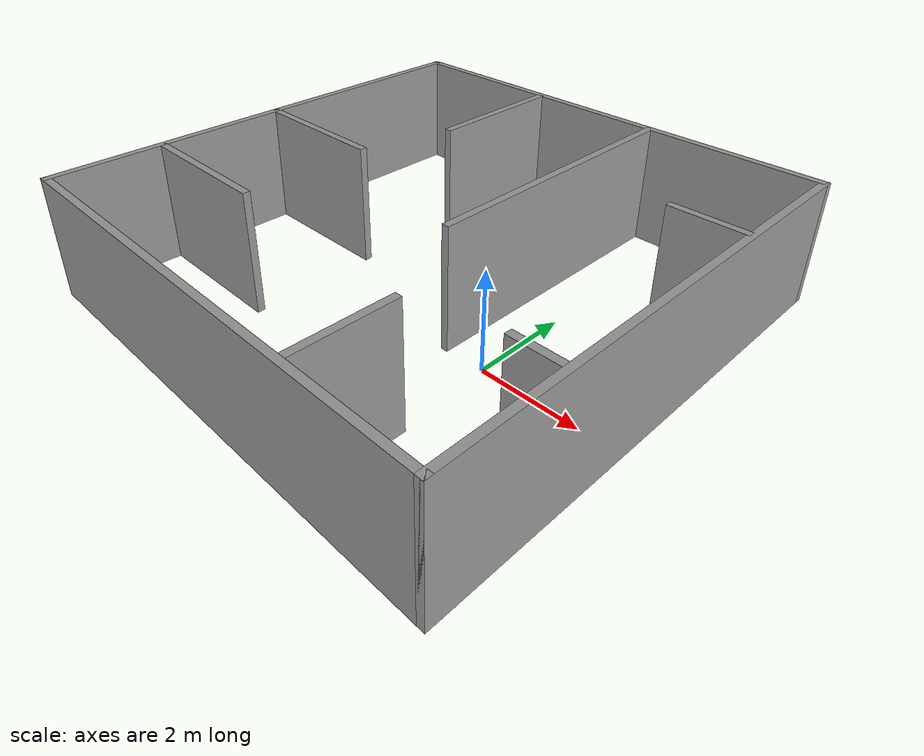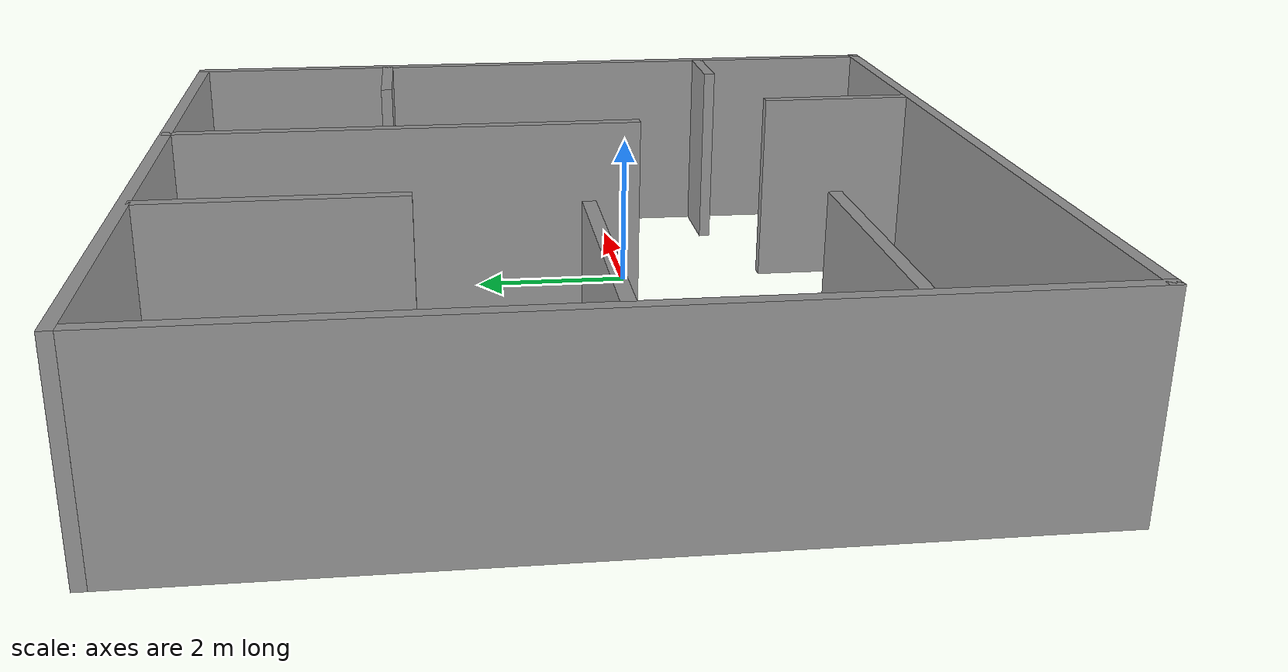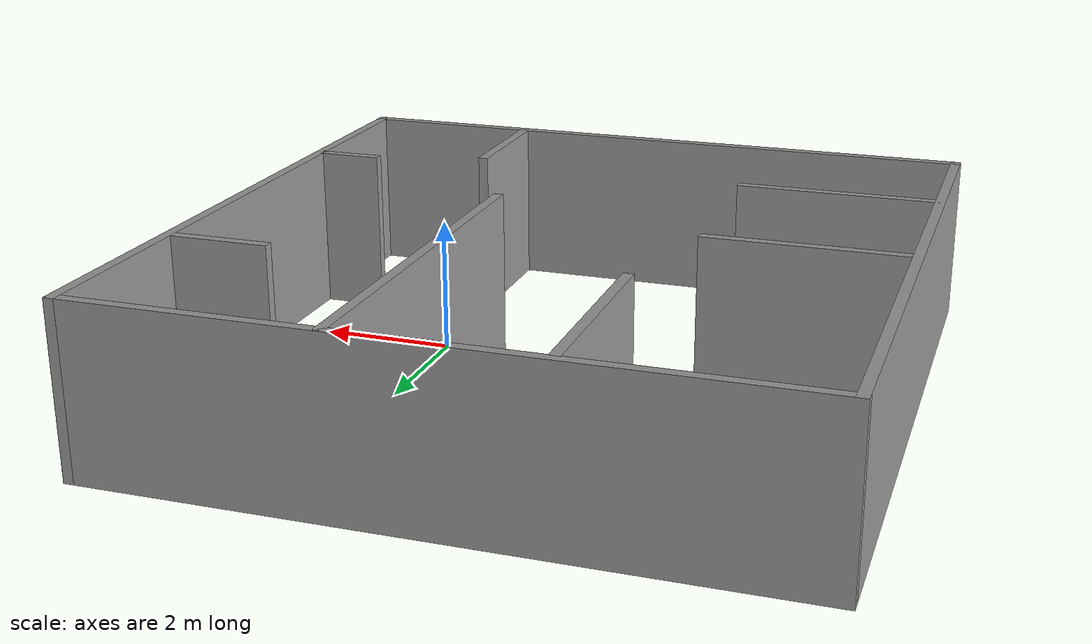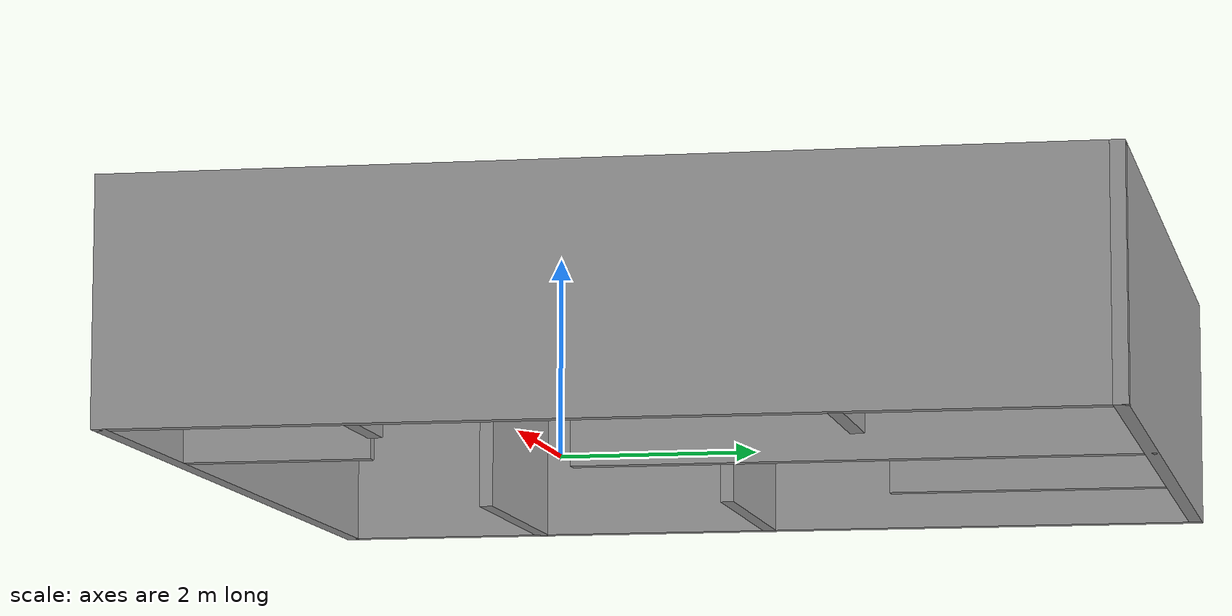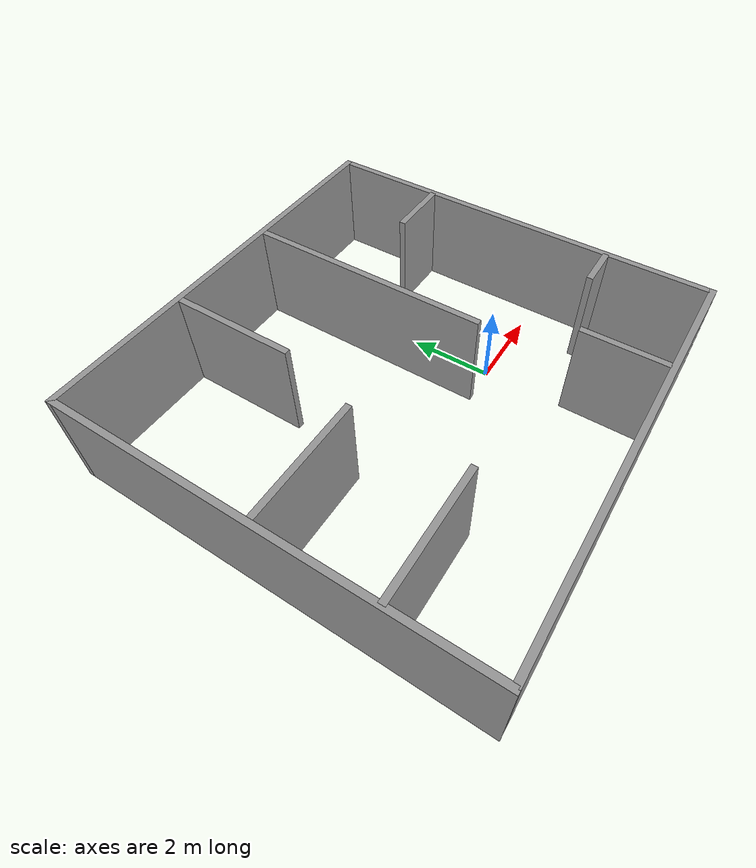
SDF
<?xml version='1.0'?>
<sdf version='1.6'>
  <model name='10*10EMPTY'>
    <pose frame=''>-2.17631 0.958638 0 0 -0 0</pose>
    <link name='Wall_25'>
      <collision name='Wall_25_Collision'>
        <geometry>
          <box>
            <size>10 0.15 2.5</size>
          </box>
        </geometry>
        <pose frame=''>0 0 1.25 0 -0 0</pose>
      </collision>
      <visual name='Wall_25_Visual'>
        <pose frame=''>0 0 1.25 0 -0 0</pose>
        <geometry>
          <box>
            <size>10 0.15 2.5</size>
          </box>
        </geometry>
        <material>
          <script>
            <uri>file://media/materials/scripts/gazebo.material</uri>
            <name>Gazebo/Grey</name>
          </script>
          <ambient>1 1 1 1</ambient>
        </material>
        <meta>
          <layer>0</layer>
        </meta>
      </visual>
      <pose frame=''>0 -4.925 0 0 -0 0</pose>
    </link>
    <link name='Wall_27'>
      <collision name='Wall_27_Collision'>
        <geometry>
          <box>
            <size>10 0.15 2.5</size>
          </box>
        </geometry>
        <pose frame=''>0 0 1.25 0 -0 0</pose>
      </collision>
      <visual name='Wall_27_Visual'>
        <pose frame=''>0 0 1.25 0 -0 0</pose>
        <geometry>
          <box>
            <size>10 0.15 2.5</size>
          </box>
        </geometry>
        <material>
          <script>
            <uri>file://media/materials/scripts/gazebo.material</uri>
            <name>Gazebo/Grey</name>
          </script>
          <ambient>1 1 1 1</ambient>
        </material>
        <meta>
          <layer>0</layer>
        </meta>
      </visual>
      <pose frame=''>4.925 -0 0 0 -0 1.5708</pose>
    </link>
    <link name='Wall_28'>
      <collision name='Wall_28_Collision'>
        <geometry>
          <box>
            <size>10 0.15 2.5</size>
          </box>
        </geometry>
        <pose frame=''>0 0 1.25 0 -0 0</pose>
      </collision>
      <visual name='Wall_28_Visual'>
        <pose frame=''>0 0 1.25 0 -0 0</pose>
        <geometry>
          <box>
            <size>10 0.15 2.5</size>
          </box>
        </geometry>
        <material>
          <script>
            <uri>file://media/materials/scripts/gazebo.material</uri>
            <name>Gazebo/Grey</name>
          </script>
          <ambient>1 1 1 1</ambient>
        </material>
        <meta>
          <layer>0</layer>
        </meta>
      </visual>
      <pose frame=''>0 4.925 0 0 -0 3.14159</pose>
    </link>
    <link name='Wall_29'>
      <collision name='Wall_29_Collision'>
        <geometry>
          <box>
            <size>10 0.15 2.5</size>
          </box>
        </geometry>
        <pose frame=''>0 0 1.25 0 -0 0</pose>
      </collision>
      <visual name='Wall_29_Visual'>
        <pose frame=''>0 0 1.25 0 -0 0</pose>
        <geometry>
          <box>
            <size>10 0.15 2.5</size>
          </box>
        </geometry>
        <material>
          <script>
            <uri>file://media/materials/scripts/gazebo.material</uri>
            <name>Gazebo/Grey</name>
          </script>
          <ambient>1 1 1 1</ambient>
        </material>
        <meta>
          <layer>0</layer>
        </meta>
      </visual>
      <pose frame=''>-4.925 -0 0 0 -0 -1.5708</pose>
    </link>
    <link name='Wall_33'>
      <collision name='Wall_33_Collision'>
        <geometry>
          <box>
            <size>3 0.15 2.5</size>
          </box>
        </geometry>
        <pose frame=''>0 0 1.25 0 -0 0</pose>
      </collision>
      <visual name='Wall_33_Visual'>
        <pose frame=''>0 0 1.25 0 -0 0</pose>
        <geometry>
          <box>
            <size>3 0.15 2.5</size>
          </box>
        </geometry>
        <material>
          <script>
            <uri>file://media/materials/scripts/gazebo.material</uri>
            <name>Gazebo/Grey</name>
          </script>
          <ambient>1 1 1 1</ambient>
        </material>
        <meta>
          <layer>0</layer>
        </meta>
      </visual>
      <pose frame=''>-3.42448 -2.6552 0 0 -0 0</pose>
    </link>
    <link name='Wall_35'>
      <collision name='Wall_35_Collision'>
        <geometry>
          <box>
            <size>3 0.15 2.5</size>
          </box>
        </geometry>
        <pose frame=''>0 0 1.25 0 -0 0</pose>
      </collision>
      <visual name='Wall_35_Visual'>
        <pose frame=''>0 0 1.25 0 -0 0</pose>
        <geometry>
          <box>
            <size>3 0.15 2.5</size>
          </box>
        </geometry>
        <material>
          <script>
            <uri>file://media/materials/scripts/gazebo.material</uri>
            <name>Gazebo/Grey</name>
          </script>
          <ambient>1 1 1 1</ambient>
        </material>
        <meta>
          <layer>0</layer>
        </meta>
      </visual>
      <pose frame=''>-3.47577 0.029239 0 0 -0 0</pose>
    </link>
    <link name='Wall_37'>
      <collision name='Wall_37_Collision'>
        <geometry>
          <box>
            <size>6 0.15 2.5</size>
          </box>
        </geometry>
        <pose frame=''>0 0 1.25 0 -0 0</pose>
      </collision>
      <visual name='Wall_37_Visual'>
        <pose frame=''>0 0 1.25 0 -0 0</pose>
        <geometry>
          <box>
            <size>6 0.15 2.5</size>
          </box>
        </geometry>
        <material>
          <script>
            <uri>file://media/materials/scripts/gazebo.material</uri>
            <name>Gazebo/Grey</name>
          </script>
          <ambient>1 1 1 1</ambient>
        </material>
        <meta>
          <layer>0</layer>
        </meta>
      </visual>
      <pose frame=''>1.32303 1.97727 0 0 -0 -1.5708</pose>
    </link>
    <link name='Wall_39'>
      <collision name='Wall_39_Collision'>
        <geometry>
          <box>
            <size>3 0.15 2.5</size>
          </box>
        </geometry>
        <pose frame=''>0 0 1.25 0 -0 0</pose>
      </collision>
      <visual name='Wall_39_Visual'>
        <pose frame=''>0 0 1.25 0 -0 0</pose>
        <geometry>
          <box>
            <size>3 0.15 2.5</size>
          </box>
        </geometry>
        <material>
          <script>
            <uri>file://media/materials/scripts/gazebo.material</uri>
            <name>Gazebo/Grey</name>
          </script>
          <ambient>1 1 1 1</ambient>
        </material>
        <meta>
          <layer>0</layer>
        </meta>
      </visual>
      <pose frame=''>-1.5153 3.39178 0 0 -0 -1.5708</pose>
    </link>
    <link name='Wall_41'>
      <collision name='Wall_41_Collision'>
        <geometry>
          <box>
            <size>2 0.15 2.5</size>
          </box>
        </geometry>
        <pose frame=''>0 0 1.25 0 -0 0</pose>
      </collision>
      <visual name='Wall_41_Visual'>
        <pose frame=''>0 0 1.25 0 -0 0</pose>
        <geometry>
          <box>
            <size>2 0.15 2.5</size>
          </box>
        </geometry>
        <material>
          <script>
            <uri>file://media/materials/scripts/gazebo.material</uri>
            <name>Gazebo/Grey</name>
          </script>
          <ambient>1 1 1 1</ambient>
        </material>
        <meta>
          <layer>0</layer>
        </meta>
      </visual>
      <pose frame=''>2.28054 -3.88797 0 0 -0 -1.5708</pose>
    </link>
    <link name='Wall_43'>
      <collision name='Wall_43_Collision'>
        <geometry>
          <box>
            <size>1.5 0.15 2.5</size>
          </box>
        </geometry>
        <pose frame=''>0 0 1.25 0 -0 0</pose>
      </collision>
      <visual name='Wall_43_Visual'>
        <pose frame=''>0 0 1.25 0 -0 0</pose>
        <geometry>
          <box>
            <size>1.5 0.15 2.5</size>
          </box>
        </geometry>
        <material>
          <script>
            <uri>file://media/materials/scripts/gazebo.material</uri>
            <name>Gazebo/Grey</name>
          </script>
          <ambient>1 1 1 1</ambient>
        </material>
        <meta>
          <layer>0</layer>
        </meta>
      </visual>
      <pose frame=''>4.15242 2.23493 0 0 -0 0</pose>
    </link>
    <link name='Wall_45'>
      <collision name='Wall_45_Collision'>
        <geometry>
          <box>
            <size>1 0.15 2.5</size>
          </box>
        </geometry>
        <pose frame=''>0 0 1.25 0 -0 0</pose>
      </collision>
      <visual name='Wall_45_Visual'>
        <pose frame=''>0 0 1.25 0 -0 0</pose>
        <geometry>
          <box>
            <size>1 0.15 2.5</size>
          </box>
        </geometry>
        <material>
          <script>
            <uri>file://media/materials/scripts/gazebo.material</uri>
            <name>Gazebo/Grey</name>
          </script>
          <ambient>1 1 1 1</ambient>
        </material>
        <meta>
          <layer>0</layer>
        </meta>
      </visual>
      <pose frame=''>4.4032 -2.45002 0 0 -0 3.14159</pose>
    </link>
    <static>1</static>
  </model>
</sdf>
